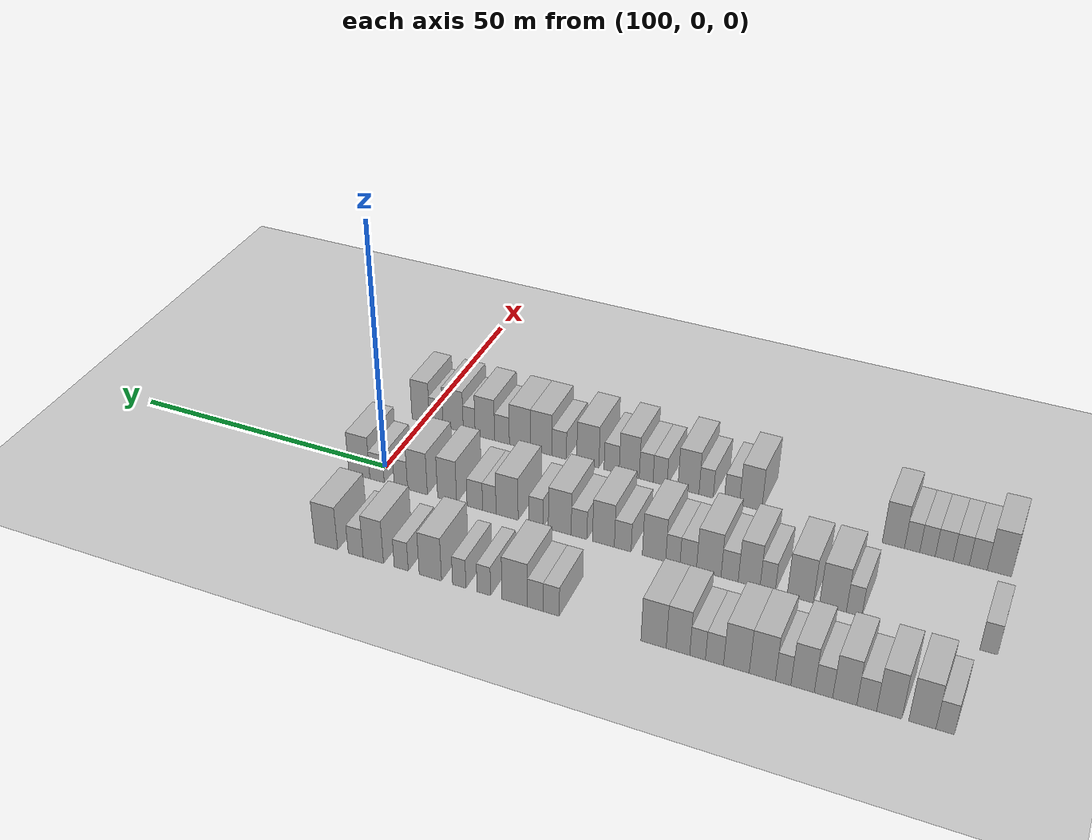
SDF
<sdf version="1.6">
 <world name="default">
  <include>
   <name>ground_plane_2</name>
   <uri>model://HANNAS_ground_plane</uri>
   <pose>100 0 0  0 0 0</pose>
  </include>
  <model name="building_575">
   <static>1</static>
   <pose>82.0000 -104.3540 0 0.000000 0.000000 0.000000</pose>
   <link name="link">
    <pose>0 0 3.00 0 0 0</pose>
    <collision name="collision"><geometry><box><size>10.0000 2.6939 6.0000</size></box></geometry></collision>
    <visual name="visual">
     <cast_shadows>0</cast_shadows>
     <geometry><box><size>10.0000 2.6939 6.0000</size></box></geometry>
     <material>
      <script>
       <uri>model://HANNAS_wall/materials/scripts</uri>
       <uri>model://HANNAS_wall/materials/textures</uri>
       <name>vrc/HANNAS_wall</name>
      </script>
     </material>
    </visual>
   </link>
  </model>
  <model name="building_576">
   <static>1</static>
   <pose>82.0000 -101.0082 0 0.000000 0.000000 0.000000</pose>
   <link name="link">
    <pose>0 0 4.50 0 0 0</pose>
    <collision name="collision"><geometry><box><size>10.0000 3.9977 9.0000</size></box></geometry></collision>
    <visual name="visual">
     <cast_shadows>0</cast_shadows>
     <geometry><box><size>10.0000 3.9977 9.0000</size></box></geometry>
     <material>
      <script>
       <uri>model://HANNAS_wall/materials/scripts</uri>
       <uri>model://HANNAS_wall/materials/textures</uri>
       <name>vrc/HANNAS_wall</name>
      </script>
     </material>
    </visual>
   </link>
  </model>
  <model name="building_577">
   <static>1</static>
   <pose>82.0000 -96.1224 0 0.000000 0.000000 0.000000</pose>
   <link name="link">
    <pose>0 0 4.50 0 0 0</pose>
    <collision name="collision"><geometry><box><size>10.0000 3.7740 9.0000</size></box></geometry></collision>
    <visual name="visual">
     <cast_shadows>0</cast_shadows>
     <geometry><box><size>10.0000 3.7740 9.0000</size></box></geometry>
     <material>
      <script>
       <uri>model://HANNAS_wall/materials/scripts</uri>
       <uri>model://HANNAS_wall/materials/textures</uri>
       <name>vrc/HANNAS_wall</name>
      </script>
     </material>
    </visual>
   </link>
  </model>
  <model name="building_578">
   <static>1</static>
   <pose>82.0000 -92.7496 0 0.000000 0.000000 0.000000</pose>
   <link name="link">
    <pose>0 0 3.00 0 0 0</pose>
    <collision name="collision"><geometry><box><size>10.0000 2.9716 6.0000</size></box></geometry></collision>
    <visual name="visual">
     <cast_shadows>0</cast_shadows>
     <geometry><box><size>10.0000 2.9716 6.0000</size></box></geometry>
     <material>
      <script>
       <uri>model://HANNAS_wall/materials/scripts</uri>
       <uri>model://HANNAS_wall/materials/textures</uri>
       <name>vrc/HANNAS_wall</name>
      </script>
     </material>
    </visual>
   </link>
  </model>
  <model name="building_579">
   <static>1</static>
   <pose>82.0000 -89.4335 0 0.000000 0.000000 0.000000</pose>
   <link name="link">
    <pose>0 0 4.50 0 0 0</pose>
    <collision name="collision"><geometry><box><size>10.0000 3.6606 9.0000</size></box></geometry></collision>
    <visual name="visual">
     <cast_shadows>0</cast_shadows>
     <geometry><box><size>10.0000 3.6606 9.0000</size></box></geometry>
     <material>
      <script>
       <uri>model://HANNAS_wall/materials/scripts</uri>
       <uri>model://HANNAS_wall/materials/textures</uri>
       <name>vrc/HANNAS_wall</name>
      </script>
     </material>
    </visual>
   </link>
  </model>
  <model name="building_580">
   <static>1</static>
   <pose>82.0000 -86.1973 0 0.000000 0.000000 0.000000</pose>
   <link name="link">
    <pose>0 0 3.00 0 0 0</pose>
    <collision name="collision"><geometry><box><size>10.0000 2.8118 6.0000</size></box></geometry></collision>
    <visual name="visual">
     <cast_shadows>0</cast_shadows>
     <geometry><box><size>10.0000 2.8118 6.0000</size></box></geometry>
     <material>
      <script>
       <uri>model://HANNAS_wall/materials/scripts</uri>
       <uri>model://HANNAS_wall/materials/textures</uri>
       <name>vrc/HANNAS_wall</name>
      </script>
     </material>
    </visual>
   </link>
  </model>
  <model name="building_581">
   <static>1</static>
   <pose>82.0000 -82.9815 0 0.000000 0.000000 0.000000</pose>
   <link name="link">
    <pose>0 0 4.50 0 0 0</pose>
    <collision name="collision"><geometry><box><size>10.0000 3.6198 9.0000</size></box></geometry></collision>
    <visual name="visual">
     <cast_shadows>0</cast_shadows>
     <geometry><box><size>10.0000 3.6198 9.0000</size></box></geometry>
     <material>
      <script>
       <uri>model://HANNAS_wall/materials/scripts</uri>
       <uri>model://HANNAS_wall/materials/textures</uri>
       <name>vrc/HANNAS_wall</name>
      </script>
     </material>
    </visual>
   </link>
  </model>
  <model name="building_582">
   <static>1</static>
   <pose>82.0000 -79.9645 0 0.000000 0.000000 0.000000</pose>
   <link name="link">
    <pose>0 0 3.00 0 0 0</pose>
    <collision name="collision"><geometry><box><size>10.0000 2.4142 6.0000</size></box></geometry></collision>
    <visual name="visual">
     <cast_shadows>0</cast_shadows>
     <geometry><box><size>10.0000 2.4142 6.0000</size></box></geometry>
     <material>
      <script>
       <uri>model://HANNAS_wall/materials/scripts</uri>
       <uri>model://HANNAS_wall/materials/textures</uri>
       <name>vrc/HANNAS_wall</name>
      </script>
     </material>
    </visual>
   </link>
  </model>
  <model name="building_583">
   <static>1</static>
   <pose>82.0000 -76.7062 0 0.000000 0.000000 0.000000</pose>
   <link name="link">
    <pose>0 0 4.50 0 0 0</pose>
    <collision name="collision"><geometry><box><size>10.0000 4.1023 9.0000</size></box></geometry></collision>
    <visual name="visual">
     <cast_shadows>0</cast_shadows>
     <geometry><box><size>10.0000 4.1023 9.0000</size></box></geometry>
     <material>
      <script>
       <uri>model://HANNAS_wall/materials/scripts</uri>
       <uri>model://HANNAS_wall/materials/textures</uri>
       <name>vrc/HANNAS_wall</name>
      </script>
     </material>
    </visual>
   </link>
  </model>
  <model name="building_584">
   <static>1</static>
   <pose>82.0000 -72.6085 0 0.000000 0.000000 0.000000</pose>
   <link name="link">
    <pose>0 0 4.50 0 0 0</pose>
    <collision name="collision"><geometry><box><size>10.0000 4.0931 9.0000</size></box></geometry></collision>
    <visual name="visual">
     <cast_shadows>0</cast_shadows>
     <geometry><box><size>10.0000 4.0931 9.0000</size></box></geometry>
     <material>
      <script>
       <uri>model://HANNAS_wall/materials/scripts</uri>
       <uri>model://HANNAS_wall/materials/textures</uri>
       <name>vrc/HANNAS_wall</name>
      </script>
     </material>
    </visual>
   </link>
  </model>
  <model name="building_585">
   <static>1</static>
   <pose>82.0000 -69.1121 0 0.000000 0.000000 0.000000</pose>
   <link name="link">
    <pose>0 0 3.00 0 0 0</pose>
    <collision name="collision"><geometry><box><size>10.0000 2.8999 6.0000</size></box></geometry></collision>
    <visual name="visual">
     <cast_shadows>0</cast_shadows>
     <geometry><box><size>10.0000 2.8999 6.0000</size></box></geometry>
     <material>
      <script>
       <uri>model://HANNAS_wall/materials/scripts</uri>
       <uri>model://HANNAS_wall/materials/textures</uri>
       <name>vrc/HANNAS_wall</name>
      </script>
     </material>
    </visual>
   </link>
  </model>
  <model name="building_586">
   <static>1</static>
   <pose>82.0000 -66.3932 0 0.000000 0.000000 0.000000</pose>
   <link name="link">
    <pose>0 0 3.00 0 0 0</pose>
    <collision name="collision"><geometry><box><size>10.0000 2.5379 6.0000</size></box></geometry></collision>
    <visual name="visual">
     <cast_shadows>0</cast_shadows>
     <geometry><box><size>10.0000 2.5379 6.0000</size></box></geometry>
     <material>
      <script>
       <uri>model://HANNAS_wall/materials/scripts</uri>
       <uri>model://HANNAS_wall/materials/textures</uri>
       <name>vrc/HANNAS_wall</name>
      </script>
     </material>
    </visual>
   </link>
  </model>
  <model name="building_587">
   <static>1</static>
   <pose>82.0000 -63.2085 0 0.000000 0.000000 0.000000</pose>
   <link name="link">
    <pose>0 0 4.50 0 0 0</pose>
    <collision name="collision"><geometry><box><size>10.0000 3.8314 9.0000</size></box></geometry></collision>
    <visual name="visual">
     <cast_shadows>0</cast_shadows>
     <geometry><box><size>10.0000 3.8314 9.0000</size></box></geometry>
     <material>
      <script>
       <uri>model://HANNAS_wall/materials/scripts</uri>
       <uri>model://HANNAS_wall/materials/textures</uri>
       <name>vrc/HANNAS_wall</name>
      </script>
     </material>
    </visual>
   </link>
  </model>
  <model name="building_588">
   <static>1</static>
   <pose>82.0000 -59.2131 0 0.000000 0.000000 0.000000</pose>
   <link name="link">
    <pose>0 0 4.50 0 0 0</pose>
    <collision name="collision"><geometry><box><size>10.0000 4.1595 9.0000</size></box></geometry></collision>
    <visual name="visual">
     <cast_shadows>0</cast_shadows>
     <geometry><box><size>10.0000 4.1595 9.0000</size></box></geometry>
     <material>
      <script>
       <uri>model://HANNAS_wall/materials/scripts</uri>
       <uri>model://HANNAS_wall/materials/textures</uri>
       <name>vrc/HANNAS_wall</name>
      </script>
     </material>
    </visual>
   </link>
  </model>
  <model name="building_589">
   <static>1</static>
   <pose>82.0000 -41.9427 0 0.000000 0.000000 0.000000</pose>
   <link name="link">
    <pose>0 0 3.00 0 0 0</pose>
    <collision name="collision"><geometry><box><size>10.0000 2.7938 6.0000</size></box></geometry></collision>
    <visual name="visual">
     <cast_shadows>0</cast_shadows>
     <geometry><box><size>10.0000 2.7938 6.0000</size></box></geometry>
     <material>
      <script>
       <uri>model://HANNAS_wall/materials/scripts</uri>
       <uri>model://HANNAS_wall/materials/textures</uri>
       <name>vrc/HANNAS_wall</name>
      </script>
     </material>
    </visual>
   </link>
  </model>
  <model name="building_590">
   <static>1</static>
   <pose>82.0000 -39.1958 0 0.000000 0.000000 0.000000</pose>
   <link name="link">
    <pose>0 0 3.00 0 0 0</pose>
    <collision name="collision"><geometry><box><size>10.0000 2.7001 6.0000</size></box></geometry></collision>
    <visual name="visual">
     <cast_shadows>0</cast_shadows>
     <geometry><box><size>10.0000 2.7001 6.0000</size></box></geometry>
     <material>
      <script>
       <uri>model://HANNAS_wall/materials/scripts</uri>
       <uri>model://HANNAS_wall/materials/textures</uri>
       <name>vrc/HANNAS_wall</name>
      </script>
     </material>
    </visual>
   </link>
  </model>
  <model name="building_591">
   <static>1</static>
   <pose>82.0000 -35.6001 0 0.000000 0.000000 0.000000</pose>
   <link name="link">
    <pose>0 0 4.50 0 0 0</pose>
    <collision name="collision"><geometry><box><size>10.0000 4.4913 9.0000</size></box></geometry></collision>
    <visual name="visual">
     <cast_shadows>0</cast_shadows>
     <geometry><box><size>10.0000 4.4913 9.0000</size></box></geometry>
     <material>
      <script>
       <uri>model://HANNAS_wall/materials/scripts</uri>
       <uri>model://HANNAS_wall/materials/textures</uri>
       <name>vrc/HANNAS_wall</name>
      </script>
     </material>
    </visual>
   </link>
  </model>
  <model name="building_592">
   <static>1</static>
   <pose>82.0000 -30.1511 0 0.000000 0.000000 0.000000</pose>
   <link name="link">
    <pose>0 0 3.00 0 0 0</pose>
    <collision name="collision"><geometry><box><size>10.0000 2.4069 6.0000</size></box></geometry></collision>
    <visual name="visual">
     <cast_shadows>0</cast_shadows>
     <geometry><box><size>10.0000 2.4069 6.0000</size></box></geometry>
     <material>
      <script>
       <uri>model://HANNAS_wall/materials/scripts</uri>
       <uri>model://HANNAS_wall/materials/textures</uri>
       <name>vrc/HANNAS_wall</name>
      </script>
     </material>
    </visual>
   </link>
  </model>
  <model name="building_593">
   <static>1</static>
   <pose>82.0000 -25.7452 0 0.000000 0.000000 0.000000</pose>
   <link name="link">
    <pose>0 0 3.00 0 0 0</pose>
    <collision name="collision"><geometry><box><size>10.0000 2.4048 6.0000</size></box></geometry></collision>
    <visual name="visual">
     <cast_shadows>0</cast_shadows>
     <geometry><box><size>10.0000 2.4048 6.0000</size></box></geometry>
     <material>
      <script>
       <uri>model://HANNAS_wall/materials/scripts</uri>
       <uri>model://HANNAS_wall/materials/textures</uri>
       <name>vrc/HANNAS_wall</name>
      </script>
     </material>
    </visual>
   </link>
  </model>
  <model name="building_594">
   <static>1</static>
   <pose>82.0000 -20.4985 0 0.000000 0.000000 0.000000</pose>
   <link name="link">
    <pose>0 0 4.50 0 0 0</pose>
    <collision name="collision"><geometry><box><size>10.0000 4.0887 9.0000</size></box></geometry></collision>
    <visual name="visual">
     <cast_shadows>0</cast_shadows>
     <geometry><box><size>10.0000 4.0887 9.0000</size></box></geometry>
     <material>
      <script>
       <uri>model://HANNAS_wall/materials/scripts</uri>
       <uri>model://HANNAS_wall/materials/textures</uri>
       <name>vrc/HANNAS_wall</name>
      </script>
     </material>
    </visual>
   </link>
  </model>
  <model name="building_595">
   <static>1</static>
   <pose>82.0000 -15.1555 0 0.000000 0.000000 0.000000</pose>
   <link name="link">
    <pose>0 0 3.00 0 0 0</pose>
    <collision name="collision"><geometry><box><size>10.0000 2.5972 6.0000</size></box></geometry></collision>
    <visual name="visual">
     <cast_shadows>0</cast_shadows>
     <geometry><box><size>10.0000 2.5972 6.0000</size></box></geometry>
     <material>
      <script>
       <uri>model://HANNAS_wall/materials/scripts</uri>
       <uri>model://HANNAS_wall/materials/textures</uri>
       <name>vrc/HANNAS_wall</name>
      </script>
     </material>
    </visual>
   </link>
  </model>
  <model name="building_596">
   <static>1</static>
   <pose>82.0000 -9.9549 0 0.000000 0.000000 0.000000</pose>
   <link name="link">
    <pose>0 0 4.50 0 0 0</pose>
    <collision name="collision"><geometry><box><size>10.0000 3.8040 9.0000</size></box></geometry></collision>
    <visual name="visual">
     <cast_shadows>0</cast_shadows>
     <geometry><box><size>10.0000 3.8040 9.0000</size></box></geometry>
     <material>
      <script>
       <uri>model://HANNAS_wall/materials/scripts</uri>
       <uri>model://HANNAS_wall/materials/textures</uri>
       <name>vrc/HANNAS_wall</name>
      </script>
     </material>
    </visual>
   </link>
  </model>
  <model name="building_597">
   <static>1</static>
   <pose>82.0000 -6.6315 0 0.000000 0.000000 0.000000</pose>
   <link name="link">
    <pose>0 0 3.00 0 0 0</pose>
    <collision name="collision"><geometry><box><size>10.0000 2.8429 6.0000</size></box></geometry></collision>
    <visual name="visual">
     <cast_shadows>0</cast_shadows>
     <geometry><box><size>10.0000 2.8429 6.0000</size></box></geometry>
     <material>
      <script>
       <uri>model://HANNAS_wall/materials/scripts</uri>
       <uri>model://HANNAS_wall/materials/textures</uri>
       <name>vrc/HANNAS_wall</name>
      </script>
     </material>
    </visual>
   </link>
  </model>
  <model name="building_598">
   <static>1</static>
   <pose>82.0000 -1.0185 0 0.000000 0.000000 0.000000</pose>
   <link name="link">
    <pose>0 0 4.50 0 0 0</pose>
    <collision name="collision"><geometry><box><size>10.0000 4.3831 9.0000</size></box></geometry></collision>
    <visual name="visual">
     <cast_shadows>0</cast_shadows>
     <geometry><box><size>10.0000 4.3831 9.0000</size></box></geometry>
     <material>
      <script>
       <uri>model://HANNAS_wall/materials/scripts</uri>
       <uri>model://HANNAS_wall/materials/textures</uri>
       <name>vrc/HANNAS_wall</name>
      </script>
     </material>
    </visual>
   </link>
  </model>
  <model name="building_747">
   <static>1</static>
   <pose>101.0000 -107.3086 0 0.000000 0.000000 0.000000</pose>
   <link name="link">
    <pose>0 0 3.00 0 0 0</pose>
    <collision name="collision"><geometry><box><size>10.0000 2.7430 6.0000</size></box></geometry></collision>
    <visual name="visual">
     <cast_shadows>0</cast_shadows>
     <geometry><box><size>10.0000 2.7430 6.0000</size></box></geometry>
     <material>
      <script>
       <uri>model://HANNAS_wall/materials/scripts</uri>
       <uri>model://HANNAS_wall/materials/textures</uri>
       <name>vrc/HANNAS_wall</name>
      </script>
     </material>
    </visual>
   </link>
  </model>
  <model name="building_748">
   <static>1</static>
   <pose>101.0000 -86.1704 0 0.000000 0.000000 0.000000</pose>
   <link name="link">
    <pose>0 0 3.00 0 0 0</pose>
    <collision name="collision"><geometry><box><size>10.0000 2.5112 6.0000</size></box></geometry></collision>
    <visual name="visual">
     <cast_shadows>0</cast_shadows>
     <geometry><box><size>10.0000 2.5112 6.0000</size></box></geometry>
     <material>
      <script>
       <uri>model://HANNAS_wall/materials/scripts</uri>
       <uri>model://HANNAS_wall/materials/textures</uri>
       <name>vrc/HANNAS_wall</name>
      </script>
     </material>
    </visual>
   </link>
  </model>
  <model name="building_749">
   <static>1</static>
   <pose>101.0000 -82.7253 0 0.000000 0.000000 0.000000</pose>
   <link name="link">
    <pose>0 0 4.50 0 0 0</pose>
    <collision name="collision"><geometry><box><size>10.0000 4.3790 9.0000</size></box></geometry></collision>
    <visual name="visual">
     <cast_shadows>0</cast_shadows>
     <geometry><box><size>10.0000 4.3790 9.0000</size></box></geometry>
     <material>
      <script>
       <uri>model://HANNAS_wall/materials/scripts</uri>
       <uri>model://HANNAS_wall/materials/textures</uri>
       <name>vrc/HANNAS_wall</name>
      </script>
     </material>
    </visual>
   </link>
  </model>
  <model name="building_750">
   <static>1</static>
   <pose>101.0000 -77.3717 0 0.000000 0.000000 0.000000</pose>
   <link name="link">
    <pose>0 0 4.50 0 0 0</pose>
    <collision name="collision"><geometry><box><size>10.0000 4.3282 9.0000</size></box></geometry></collision>
    <visual name="visual">
     <cast_shadows>0</cast_shadows>
     <geometry><box><size>10.0000 4.3282 9.0000</size></box></geometry>
     <material>
      <script>
       <uri>model://HANNAS_wall/materials/scripts</uri>
       <uri>model://HANNAS_wall/materials/textures</uri>
       <name>vrc/HANNAS_wall</name>
      </script>
     </material>
    </visual>
   </link>
  </model>
  <model name="building_751">
   <static>1</static>
   <pose>101.0000 -71.9371 0 0.000000 0.000000 0.000000</pose>
   <link name="link">
    <pose>0 0 3.00 0 0 0</pose>
    <collision name="collision"><geometry><box><size>10.0000 2.5411 6.0000</size></box></geometry></collision>
    <visual name="visual">
     <cast_shadows>0</cast_shadows>
     <geometry><box><size>10.0000 2.5411 6.0000</size></box></geometry>
     <material>
      <script>
       <uri>model://HANNAS_wall/materials/scripts</uri>
       <uri>model://HANNAS_wall/materials/textures</uri>
       <name>vrc/HANNAS_wall</name>
      </script>
     </material>
    </visual>
   </link>
  </model>
  <model name="building_752">
   <static>1</static>
   <pose>101.0000 -68.8232 0 0.000000 0.000000 0.000000</pose>
   <link name="link">
    <pose>0 0 4.50 0 0 0</pose>
    <collision name="collision"><geometry><box><size>10.0000 3.6865 9.0000</size></box></geometry></collision>
    <visual name="visual">
     <cast_shadows>0</cast_shadows>
     <geometry><box><size>10.0000 3.6865 9.0000</size></box></geometry>
     <material>
      <script>
       <uri>model://HANNAS_wall/materials/scripts</uri>
       <uri>model://HANNAS_wall/materials/textures</uri>
       <name>vrc/HANNAS_wall</name>
      </script>
     </material>
    </visual>
   </link>
  </model>
  <model name="building_753">
   <static>1</static>
   <pose>101.0000 -65.5203 0 0.000000 0.000000 0.000000</pose>
   <link name="link">
    <pose>0 0 3.00 0 0 0</pose>
    <collision name="collision"><geometry><box><size>10.0000 2.9194 6.0000</size></box></geometry></collision>
    <visual name="visual">
     <cast_shadows>0</cast_shadows>
     <geometry><box><size>10.0000 2.9194 6.0000</size></box></geometry>
     <material>
      <script>
       <uri>model://HANNAS_wall/materials/scripts</uri>
       <uri>model://HANNAS_wall/materials/textures</uri>
       <name>vrc/HANNAS_wall</name>
      </script>
     </material>
    </visual>
   </link>
  </model>
  <model name="building_754">
   <static>1</static>
   <pose>101.0000 -61.9426 0 0.000000 0.000000 0.000000</pose>
   <link name="link">
    <pose>0 0 4.50 0 0 0</pose>
    <collision name="collision"><geometry><box><size>10.0000 4.2359 9.0000</size></box></geometry></collision>
    <visual name="visual">
     <cast_shadows>0</cast_shadows>
     <geometry><box><size>10.0000 4.2359 9.0000</size></box></geometry>
     <material>
      <script>
       <uri>model://HANNAS_wall/materials/scripts</uri>
       <uri>model://HANNAS_wall/materials/textures</uri>
       <name>vrc/HANNAS_wall</name>
      </script>
     </material>
    </visual>
   </link>
  </model>
  <model name="building_755">
   <static>1</static>
   <pose>101.0000 -58.4001 0 0.000000 0.000000 0.000000</pose>
   <link name="link">
    <pose>0 0 3.00 0 0 0</pose>
    <collision name="collision"><geometry><box><size>10.0000 2.8492 6.0000</size></box></geometry></collision>
    <visual name="visual">
     <cast_shadows>0</cast_shadows>
     <geometry><box><size>10.0000 2.8492 6.0000</size></box></geometry>
     <material>
      <script>
       <uri>model://HANNAS_wall/materials/scripts</uri>
       <uri>model://HANNAS_wall/materials/textures</uri>
       <name>vrc/HANNAS_wall</name>
      </script>
     </material>
    </visual>
   </link>
  </model>
  <model name="building_756">
   <static>1</static>
   <pose>101.0000 -55.7331 0 0.000000 0.000000 0.000000</pose>
   <link name="link">
    <pose>0 0 3.00 0 0 0</pose>
    <collision name="collision"><geometry><box><size>10.0000 2.4847 6.0000</size></box></geometry></collision>
    <visual name="visual">
     <cast_shadows>0</cast_shadows>
     <geometry><box><size>10.0000 2.4847 6.0000</size></box></geometry>
     <material>
      <script>
       <uri>model://HANNAS_wall/materials/scripts</uri>
       <uri>model://HANNAS_wall/materials/textures</uri>
       <name>vrc/HANNAS_wall</name>
      </script>
     </material>
    </visual>
   </link>
  </model>
  <model name="building_757">
   <static>1</static>
   <pose>101.0000 -52.4357 0 0.000000 0.000000 0.000000</pose>
   <link name="link">
    <pose>0 0 4.50 0 0 0</pose>
    <collision name="collision"><geometry><box><size>10.0000 4.1102 9.0000</size></box></geometry></collision>
    <visual name="visual">
     <cast_shadows>0</cast_shadows>
     <geometry><box><size>10.0000 4.1102 9.0000</size></box></geometry>
     <material>
      <script>
       <uri>model://HANNAS_wall/materials/scripts</uri>
       <uri>model://HANNAS_wall/materials/textures</uri>
       <name>vrc/HANNAS_wall</name>
      </script>
     </material>
    </visual>
   </link>
  </model>
  <model name="building_758">
   <static>1</static>
   <pose>101.0000 -46.8863 0 0.000000 0.000000 0.000000</pose>
   <link name="link">
    <pose>0 0 3.00 0 0 0</pose>
    <collision name="collision"><geometry><box><size>10.0000 2.9886 6.0000</size></box></geometry></collision>
    <visual name="visual">
     <cast_shadows>0</cast_shadows>
     <geometry><box><size>10.0000 2.9886 6.0000</size></box></geometry>
     <material>
      <script>
       <uri>model://HANNAS_wall/materials/scripts</uri>
       <uri>model://HANNAS_wall/materials/textures</uri>
       <name>vrc/HANNAS_wall</name>
      </script>
     </material>
    </visual>
   </link>
  </model>
  <model name="building_759">
   <static>1</static>
   <pose>101.0000 -43.4188 0 0.000000 0.000000 0.000000</pose>
   <link name="link">
    <pose>0 0 4.50 0 0 0</pose>
    <collision name="collision"><geometry><box><size>10.0000 3.9465 9.0000</size></box></geometry></collision>
    <visual name="visual">
     <cast_shadows>0</cast_shadows>
     <geometry><box><size>10.0000 3.9465 9.0000</size></box></geometry>
     <material>
      <script>
       <uri>model://HANNAS_wall/materials/scripts</uri>
       <uri>model://HANNAS_wall/materials/textures</uri>
       <name>vrc/HANNAS_wall</name>
      </script>
     </material>
    </visual>
   </link>
  </model>
  <model name="building_760">
   <static>1</static>
   <pose>101.0000 -39.0096 0 0.000000 0.000000 0.000000</pose>
   <link name="link">
    <pose>0 0 3.00 0 0 0</pose>
    <collision name="collision"><geometry><box><size>10.0000 2.8720 6.0000</size></box></geometry></collision>
    <visual name="visual">
     <cast_shadows>0</cast_shadows>
     <geometry><box><size>10.0000 2.8720 6.0000</size></box></geometry>
     <material>
      <script>
       <uri>model://HANNAS_wall/materials/scripts</uri>
       <uri>model://HANNAS_wall/materials/textures</uri>
       <name>vrc/HANNAS_wall</name>
      </script>
     </material>
    </visual>
   </link>
  </model>
  <model name="building_761">
   <static>1</static>
   <pose>101.0000 -35.4742 0 0.000000 0.000000 0.000000</pose>
   <link name="link">
    <pose>0 0 4.50 0 0 0</pose>
    <collision name="collision"><geometry><box><size>10.0000 4.1988 9.0000</size></box></geometry></collision>
    <visual name="visual">
     <cast_shadows>0</cast_shadows>
     <geometry><box><size>10.0000 4.1988 9.0000</size></box></geometry>
     <material>
      <script>
       <uri>model://HANNAS_wall/materials/scripts</uri>
       <uri>model://HANNAS_wall/materials/textures</uri>
       <name>vrc/HANNAS_wall</name>
      </script>
     </material>
    </visual>
   </link>
  </model>
  <model name="building_762">
   <static>1</static>
   <pose>101.0000 -31.0665 0 0.000000 0.000000 0.000000</pose>
   <link name="link">
    <pose>0 0 3.00 0 0 0</pose>
    <collision name="collision"><geometry><box><size>10.0000 2.6165 6.0000</size></box></geometry></collision>
    <visual name="visual">
     <cast_shadows>0</cast_shadows>
     <geometry><box><size>10.0000 2.6165 6.0000</size></box></geometry>
     <material>
      <script>
       <uri>model://HANNAS_wall/materials/scripts</uri>
       <uri>model://HANNAS_wall/materials/textures</uri>
       <name>vrc/HANNAS_wall</name>
      </script>
     </material>
    </visual>
   </link>
  </model>
  <model name="building_763">
   <static>1</static>
   <pose>101.0000 -25.6819 0 0.000000 0.000000 0.000000</pose>
   <link name="link">
    <pose>0 0 4.50 0 0 0</pose>
    <collision name="collision"><geometry><box><size>10.0000 4.1529 9.0000</size></box></geometry></collision>
    <visual name="visual">
     <cast_shadows>0</cast_shadows>
     <geometry><box><size>10.0000 4.1529 9.0000</size></box></geometry>
     <material>
      <script>
       <uri>model://HANNAS_wall/materials/scripts</uri>
       <uri>model://HANNAS_wall/materials/textures</uri>
       <name>vrc/HANNAS_wall</name>
      </script>
     </material>
    </visual>
   </link>
  </model>
  <model name="building_764">
   <static>1</static>
   <pose>101.0000 -22.3312 0 0.000000 0.000000 0.000000</pose>
   <link name="link">
    <pose>0 0 3.00 0 0 0</pose>
    <collision name="collision"><geometry><box><size>10.0000 2.5484 6.0000</size></box></geometry></collision>
    <visual name="visual">
     <cast_shadows>0</cast_shadows>
     <geometry><box><size>10.0000 2.5484 6.0000</size></box></geometry>
     <material>
      <script>
       <uri>model://HANNAS_wall/materials/scripts</uri>
       <uri>model://HANNAS_wall/materials/textures</uri>
       <name>vrc/HANNAS_wall</name>
      </script>
     </material>
    </visual>
   </link>
  </model>
  <model name="building_765">
   <static>1</static>
   <pose>101.0000 -19.5704 0 0.000000 0.000000 0.000000</pose>
   <link name="link">
    <pose>0 0 3.00 0 0 0</pose>
    <collision name="collision"><geometry><box><size>10.0000 2.9733 6.0000</size></box></geometry></collision>
    <visual name="visual">
     <cast_shadows>0</cast_shadows>
     <geometry><box><size>10.0000 2.9733 6.0000</size></box></geometry>
     <material>
      <script>
       <uri>model://HANNAS_wall/materials/scripts</uri>
       <uri>model://HANNAS_wall/materials/textures</uri>
       <name>vrc/HANNAS_wall</name>
      </script>
     </material>
    </visual>
   </link>
  </model>
  <model name="building_766">
   <static>1</static>
   <pose>101.0000 -14.2437 0 0.000000 0.000000 0.000000</pose>
   <link name="link">
    <pose>0 0 4.50 0 0 0</pose>
    <collision name="collision"><geometry><box><size>10.0000 3.6801 9.0000</size></box></geometry></collision>
    <visual name="visual">
     <cast_shadows>0</cast_shadows>
     <geometry><box><size>10.0000 3.6801 9.0000</size></box></geometry>
     <material>
      <script>
       <uri>model://HANNAS_wall/materials/scripts</uri>
       <uri>model://HANNAS_wall/materials/textures</uri>
       <name>vrc/HANNAS_wall</name>
      </script>
     </material>
    </visual>
   </link>
  </model>
  <model name="building_767">
   <static>1</static>
   <pose>101.0000 -8.4567 0 0.000000 0.000000 0.000000</pose>
   <link name="link">
    <pose>0 0 4.50 0 0 0</pose>
    <collision name="collision"><geometry><box><size>10.0000 3.8938 9.0000</size></box></geometry></collision>
    <visual name="visual">
     <cast_shadows>0</cast_shadows>
     <geometry><box><size>10.0000 3.8938 9.0000</size></box></geometry>
     <material>
      <script>
       <uri>model://HANNAS_wall/materials/scripts</uri>
       <uri>model://HANNAS_wall/materials/textures</uri>
       <name>vrc/HANNAS_wall</name>
      </script>
     </material>
    </visual>
   </link>
  </model>
  <model name="building_768">
   <static>1</static>
   <pose>101.0000 -5.1970 0 0.000000 0.000000 0.000000</pose>
   <link name="link">
    <pose>0 0 3.00 0 0 0</pose>
    <collision name="collision"><geometry><box><size>10.0000 2.6257 6.0000</size></box></geometry></collision>
    <visual name="visual">
     <cast_shadows>0</cast_shadows>
     <geometry><box><size>10.0000 2.6257 6.0000</size></box></geometry>
     <material>
      <script>
       <uri>model://HANNAS_wall/materials/scripts</uri>
       <uri>model://HANNAS_wall/materials/textures</uri>
       <name>vrc/HANNAS_wall</name>
      </script>
     </material>
    </visual>
   </link>
  </model>
  <model name="building_769">
   <static>1</static>
   <pose>101.0000 -0.4449 0 0.000000 0.000000 0.000000</pose>
   <link name="link">
    <pose>0 0 3.00 0 0 0</pose>
    <collision name="collision"><geometry><box><size>10.0000 2.8785 6.0000</size></box></geometry></collision>
    <visual name="visual">
     <cast_shadows>0</cast_shadows>
     <geometry><box><size>10.0000 2.8785 6.0000</size></box></geometry>
     <material>
      <script>
       <uri>model://HANNAS_wall/materials/scripts</uri>
       <uri>model://HANNAS_wall/materials/textures</uri>
       <name>vrc/HANNAS_wall</name>
      </script>
     </material>
    </visual>
   </link>
  </model>
  <model name="building_770">
   <static>1</static>
   <pose>101.0000 3.1016 0 0.000000 0.000000 0.000000</pose>
   <link name="link">
    <pose>0 0 4.50 0 0 0</pose>
    <collision name="collision"><geometry><box><size>10.0000 4.2146 9.0000</size></box></geometry></collision>
    <visual name="visual">
     <cast_shadows>0</cast_shadows>
     <geometry><box><size>10.0000 4.2146 9.0000</size></box></geometry>
     <material>
      <script>
       <uri>model://HANNAS_wall/materials/scripts</uri>
       <uri>model://HANNAS_wall/materials/textures</uri>
       <name>vrc/HANNAS_wall</name>
      </script>
     </material>
    </visual>
   </link>
  </model>
  <model name="building_917">
   <static>1</static>
   <pose>120.0000 -105.7099 0 0.000000 0.000000 0.000000</pose>
   <link name="link">
    <pose>0 0 4.50 0 0 0</pose>
    <collision name="collision"><geometry><box><size>10.0000 3.9348 9.0000</size></box></geometry></collision>
    <visual name="visual">
     <cast_shadows>0</cast_shadows>
     <geometry><box><size>10.0000 3.9348 9.0000</size></box></geometry>
     <material>
      <script>
       <uri>model://HANNAS_wall/materials/scripts</uri>
       <uri>model://HANNAS_wall/materials/textures</uri>
       <name>vrc/HANNAS_wall</name>
      </script>
     </material>
    </visual>
   </link>
  </model>
  <model name="building_918">
   <static>1</static>
   <pose>120.0000 -102.2704 0 0.000000 0.000000 0.000000</pose>
   <link name="link">
    <pose>0 0 3.00 0 0 0</pose>
    <collision name="collision"><geometry><box><size>10.0000 2.9441 6.0000</size></box></geometry></collision>
    <visual name="visual">
     <cast_shadows>0</cast_shadows>
     <geometry><box><size>10.0000 2.9441 6.0000</size></box></geometry>
     <material>
      <script>
       <uri>model://HANNAS_wall/materials/scripts</uri>
       <uri>model://HANNAS_wall/materials/textures</uri>
       <name>vrc/HANNAS_wall</name>
      </script>
     </material>
    </visual>
   </link>
  </model>
  <model name="building_919">
   <static>1</static>
   <pose>120.0000 -99.4796 0 0.000000 0.000000 0.000000</pose>
   <link name="link">
    <pose>0 0 3.00 0 0 0</pose>
    <collision name="collision"><geometry><box><size>10.0000 2.6376 6.0000</size></box></geometry></collision>
    <visual name="visual">
     <cast_shadows>0</cast_shadows>
     <geometry><box><size>10.0000 2.6376 6.0000</size></box></geometry>
     <material>
      <script>
       <uri>model://HANNAS_wall/materials/scripts</uri>
       <uri>model://HANNAS_wall/materials/textures</uri>
       <name>vrc/HANNAS_wall</name>
      </script>
     </material>
    </visual>
   </link>
  </model>
  <model name="building_920">
   <static>1</static>
   <pose>120.0000 -96.6784 0 0.000000 0.000000 0.000000</pose>
   <link name="link">
    <pose>0 0 3.00 0 0 0</pose>
    <collision name="collision"><geometry><box><size>10.0000 2.9646 6.0000</size></box></geometry></collision>
    <visual name="visual">
     <cast_shadows>0</cast_shadows>
     <geometry><box><size>10.0000 2.9646 6.0000</size></box></geometry>
     <material>
      <script>
       <uri>model://HANNAS_wall/materials/scripts</uri>
       <uri>model://HANNAS_wall/materials/textures</uri>
       <name>vrc/HANNAS_wall</name>
      </script>
     </material>
    </visual>
   </link>
  </model>
  <model name="building_921">
   <static>1</static>
   <pose>120.0000 -93.9006 0 0.000000 0.000000 0.000000</pose>
   <link name="link">
    <pose>0 0 3.00 0 0 0</pose>
    <collision name="collision"><geometry><box><size>10.0000 2.5910 6.0000</size></box></geometry></collision>
    <visual name="visual">
     <cast_shadows>0</cast_shadows>
     <geometry><box><size>10.0000 2.5910 6.0000</size></box></geometry>
     <material>
      <script>
       <uri>model://HANNAS_wall/materials/scripts</uri>
       <uri>model://HANNAS_wall/materials/textures</uri>
       <name>vrc/HANNAS_wall</name>
      </script>
     </material>
    </visual>
   </link>
  </model>
  <model name="building_922">
   <static>1</static>
   <pose>120.0000 -91.3291 0 0.000000 0.000000 0.000000</pose>
   <link name="link">
    <pose>0 0 3.00 0 0 0</pose>
    <collision name="collision"><geometry><box><size>10.0000 2.5521 6.0000</size></box></geometry></collision>
    <visual name="visual">
     <cast_shadows>0</cast_shadows>
     <geometry><box><size>10.0000 2.5521 6.0000</size></box></geometry>
     <material>
      <script>
       <uri>model://HANNAS_wall/materials/scripts</uri>
       <uri>model://HANNAS_wall/materials/textures</uri>
       <name>vrc/HANNAS_wall</name>
      </script>
     </material>
    </visual>
   </link>
  </model>
  <model name="building_923">
   <static>1</static>
   <pose>120.0000 -88.1747 0 0.000000 0.000000 0.000000</pose>
   <link name="link">
    <pose>0 0 4.50 0 0 0</pose>
    <collision name="collision"><geometry><box><size>10.0000 3.7566 9.0000</size></box></geometry></collision>
    <visual name="visual">
     <cast_shadows>0</cast_shadows>
     <geometry><box><size>10.0000 3.7566 9.0000</size></box></geometry>
     <material>
      <script>
       <uri>model://HANNAS_wall/materials/scripts</uri>
       <uri>model://HANNAS_wall/materials/textures</uri>
       <name>vrc/HANNAS_wall</name>
      </script>
     </material>
    </visual>
   </link>
  </model>
  <model name="building_924">
   <static>1</static>
   <pose>120.0000 -63.3026 0 0.000000 0.000000 0.000000</pose>
   <link name="link">
    <pose>0 0 4.50 0 0 0</pose>
    <collision name="collision"><geometry><box><size>10.0000 3.9959 9.0000</size></box></geometry></collision>
    <visual name="visual">
     <cast_shadows>0</cast_shadows>
     <geometry><box><size>10.0000 3.9959 9.0000</size></box></geometry>
     <material>
      <script>
       <uri>model://HANNAS_wall/materials/scripts</uri>
       <uri>model://HANNAS_wall/materials/textures</uri>
       <name>vrc/HANNAS_wall</name>
      </script>
     </material>
    </visual>
   </link>
  </model>
  <model name="building_925">
   <static>1</static>
   <pose>120.0000 -59.9243 0 0.000000 0.000000 0.000000</pose>
   <link name="link">
    <pose>0 0 3.00 0 0 0</pose>
    <collision name="collision"><geometry><box><size>10.0000 2.7606 6.0000</size></box></geometry></collision>
    <visual name="visual">
     <cast_shadows>0</cast_shadows>
     <geometry><box><size>10.0000 2.7606 6.0000</size></box></geometry>
     <material>
      <script>
       <uri>model://HANNAS_wall/materials/scripts</uri>
       <uri>model://HANNAS_wall/materials/textures</uri>
       <name>vrc/HANNAS_wall</name>
      </script>
     </material>
    </visual>
   </link>
  </model>
  <model name="building_926">
   <static>1</static>
   <pose>120.0000 -55.2328 0 0.000000 0.000000 0.000000</pose>
   <link name="link">
    <pose>0 0 3.00 0 0 0</pose>
    <collision name="collision"><geometry><box><size>10.0000 2.6224 6.0000</size></box></geometry></collision>
    <visual name="visual">
     <cast_shadows>0</cast_shadows>
     <geometry><box><size>10.0000 2.6224 6.0000</size></box></geometry>
     <material>
      <script>
       <uri>model://HANNAS_wall/materials/scripts</uri>
       <uri>model://HANNAS_wall/materials/textures</uri>
       <name>vrc/HANNAS_wall</name>
      </script>
     </material>
    </visual>
   </link>
  </model>
  <model name="building_927">
   <static>1</static>
   <pose>120.0000 -51.9736 0 0.000000 0.000000 0.000000</pose>
   <link name="link">
    <pose>0 0 4.50 0 0 0</pose>
    <collision name="collision"><geometry><box><size>10.0000 3.8959 9.0000</size></box></geometry></collision>
    <visual name="visual">
     <cast_shadows>0</cast_shadows>
     <geometry><box><size>10.0000 3.8959 9.0000</size></box></geometry>
     <material>
      <script>
       <uri>model://HANNAS_wall/materials/scripts</uri>
       <uri>model://HANNAS_wall/materials/textures</uri>
       <name>vrc/HANNAS_wall</name>
      </script>
     </material>
    </visual>
   </link>
  </model>
  <model name="building_928">
   <static>1</static>
   <pose>120.0000 -46.7137 0 0.000000 0.000000 0.000000</pose>
   <link name="link">
    <pose>0 0 3.00 0 0 0</pose>
    <collision name="collision"><geometry><box><size>10.0000 2.6240 6.0000</size></box></geometry></collision>
    <visual name="visual">
     <cast_shadows>0</cast_shadows>
     <geometry><box><size>10.0000 2.6240 6.0000</size></box></geometry>
     <material>
      <script>
       <uri>model://HANNAS_wall/materials/scripts</uri>
       <uri>model://HANNAS_wall/materials/textures</uri>
       <name>vrc/HANNAS_wall</name>
      </script>
     </material>
    </visual>
   </link>
  </model>
  <model name="building_929">
   <static>1</static>
   <pose>120.0000 -44.0988 0 0.000000 0.000000 0.000000</pose>
   <link name="link">
    <pose>0 0 3.00 0 0 0</pose>
    <collision name="collision"><geometry><box><size>10.0000 2.6056 6.0000</size></box></geometry></collision>
    <visual name="visual">
     <cast_shadows>0</cast_shadows>
     <geometry><box><size>10.0000 2.6056 6.0000</size></box></geometry>
     <material>
      <script>
       <uri>model://HANNAS_wall/materials/scripts</uri>
       <uri>model://HANNAS_wall/materials/textures</uri>
       <name>vrc/HANNAS_wall</name>
      </script>
     </material>
    </visual>
   </link>
  </model>
  <model name="building_930">
   <static>1</static>
   <pose>120.0000 -40.8960 0 0.000000 0.000000 0.000000</pose>
   <link name="link">
    <pose>0 0 4.50 0 0 0</pose>
    <collision name="collision"><geometry><box><size>10.0000 3.7999 9.0000</size></box></geometry></collision>
    <visual name="visual">
     <cast_shadows>0</cast_shadows>
     <geometry><box><size>10.0000 3.7999 9.0000</size></box></geometry>
     <material>
      <script>
       <uri>model://HANNAS_wall/materials/scripts</uri>
       <uri>model://HANNAS_wall/materials/textures</uri>
       <name>vrc/HANNAS_wall</name>
      </script>
     </material>
    </visual>
   </link>
  </model>
  <model name="building_931">
   <static>1</static>
   <pose>120.0000 -37.5584 0 0.000000 0.000000 0.000000</pose>
   <link name="link">
    <pose>0 0 3.00 0 0 0</pose>
    <collision name="collision"><geometry><box><size>10.0000 2.8753 6.0000</size></box></geometry></collision>
    <visual name="visual">
     <cast_shadows>0</cast_shadows>
     <geometry><box><size>10.0000 2.8753 6.0000</size></box></geometry>
     <material>
      <script>
       <uri>model://HANNAS_wall/materials/scripts</uri>
       <uri>model://HANNAS_wall/materials/textures</uri>
       <name>vrc/HANNAS_wall</name>
      </script>
     </material>
    </visual>
   </link>
  </model>
  <model name="building_932">
   <static>1</static>
   <pose>120.0000 -32.9792 0 0.000000 0.000000 0.000000</pose>
   <link name="link">
    <pose>0 0 4.50 0 0 0</pose>
    <collision name="collision"><geometry><box><size>10.0000 4.2833 9.0000</size></box></geometry></collision>
    <visual name="visual">
     <cast_shadows>0</cast_shadows>
     <geometry><box><size>10.0000 4.2833 9.0000</size></box></geometry>
     <material>
      <script>
       <uri>model://HANNAS_wall/materials/scripts</uri>
       <uri>model://HANNAS_wall/materials/textures</uri>
       <name>vrc/HANNAS_wall</name>
      </script>
     </material>
    </visual>
   </link>
  </model>
  <model name="building_933">
   <static>1</static>
   <pose>120.0000 -27.4238 0 0.000000 0.000000 0.000000</pose>
   <link name="link">
    <pose>0 0 3.00 0 0 0</pose>
    <collision name="collision"><geometry><box><size>10.0000 2.8273 6.0000</size></box></geometry></collision>
    <visual name="visual">
     <cast_shadows>0</cast_shadows>
     <geometry><box><size>10.0000 2.8273 6.0000</size></box></geometry>
     <material>
      <script>
       <uri>model://HANNAS_wall/materials/scripts</uri>
       <uri>model://HANNAS_wall/materials/textures</uri>
       <name>vrc/HANNAS_wall</name>
      </script>
     </material>
    </visual>
   </link>
  </model>
  <model name="building_934">
   <static>1</static>
   <pose>120.0000 -23.8927 0 0.000000 0.000000 0.000000</pose>
   <link name="link">
    <pose>0 0 4.50 0 0 0</pose>
    <collision name="collision"><geometry><box><size>10.0000 4.2348 9.0000</size></box></geometry></collision>
    <visual name="visual">
     <cast_shadows>0</cast_shadows>
     <geometry><box><size>10.0000 4.2348 9.0000</size></box></geometry>
     <material>
      <script>
       <uri>model://HANNAS_wall/materials/scripts</uri>
       <uri>model://HANNAS_wall/materials/textures</uri>
       <name>vrc/HANNAS_wall</name>
      </script>
     </material>
    </visual>
   </link>
  </model>
  <model name="building_935">
   <static>1</static>
   <pose>120.0000 -19.6703 0 0.000000 0.000000 0.000000</pose>
   <link name="link">
    <pose>0 0 4.50 0 0 0</pose>
    <collision name="collision"><geometry><box><size>10.0000 4.2100 9.0000</size></box></geometry></collision>
    <visual name="visual">
     <cast_shadows>0</cast_shadows>
     <geometry><box><size>10.0000 4.2100 9.0000</size></box></geometry>
     <material>
      <script>
       <uri>model://HANNAS_wall/materials/scripts</uri>
       <uri>model://HANNAS_wall/materials/textures</uri>
       <name>vrc/HANNAS_wall</name>
      </script>
     </material>
    </visual>
   </link>
  </model>
  <model name="building_936">
   <static>1</static>
   <pose>120.0000 -16.0831 0 0.000000 0.000000 0.000000</pose>
   <link name="link">
    <pose>0 0 3.00 0 0 0</pose>
    <collision name="collision"><geometry><box><size>10.0000 2.9644 6.0000</size></box></geometry></collision>
    <visual name="visual">
     <cast_shadows>0</cast_shadows>
     <geometry><box><size>10.0000 2.9644 6.0000</size></box></geometry>
     <material>
      <script>
       <uri>model://HANNAS_wall/materials/scripts</uri>
       <uri>model://HANNAS_wall/materials/textures</uri>
       <name>vrc/HANNAS_wall</name>
      </script>
     </material>
    </visual>
   </link>
  </model>
  <model name="building_937">
   <static>1</static>
   <pose>120.0000 -12.6337 0 0.000000 0.000000 0.000000</pose>
   <link name="link">
    <pose>0 0 4.50 0 0 0</pose>
    <collision name="collision"><geometry><box><size>10.0000 3.9344 9.0000</size></box></geometry></collision>
    <visual name="visual">
     <cast_shadows>0</cast_shadows>
     <geometry><box><size>10.0000 3.9344 9.0000</size></box></geometry>
     <material>
      <script>
       <uri>model://HANNAS_wall/materials/scripts</uri>
       <uri>model://HANNAS_wall/materials/textures</uri>
       <name>vrc/HANNAS_wall</name>
      </script>
     </material>
    </visual>
   </link>
  </model>
  <model name="building_938">
   <static>1</static>
   <pose>120.0000 -9.4624 0 0.000000 0.000000 0.000000</pose>
   <link name="link">
    <pose>0 0 3.00 0 0 0</pose>
    <collision name="collision"><geometry><box><size>10.0000 2.4083 6.0000</size></box></geometry></collision>
    <visual name="visual">
     <cast_shadows>0</cast_shadows>
     <geometry><box><size>10.0000 2.4083 6.0000</size></box></geometry>
     <material>
      <script>
       <uri>model://HANNAS_wall/materials/scripts</uri>
       <uri>model://HANNAS_wall/materials/textures</uri>
       <name>vrc/HANNAS_wall</name>
      </script>
     </material>
    </visual>
   </link>
  </model>
  <model name="building_939">
   <static>1</static>
   <pose>120.0000 -6.1741 0 0.000000 0.000000 0.000000</pose>
   <link name="link">
    <pose>0 0 4.50 0 0 0</pose>
    <collision name="collision"><geometry><box><size>10.0000 4.1682 9.0000</size></box></geometry></collision>
    <visual name="visual">
     <cast_shadows>0</cast_shadows>
     <geometry><box><size>10.0000 4.1682 9.0000</size></box></geometry>
     <material>
      <script>
       <uri>model://HANNAS_wall/materials/scripts</uri>
       <uri>model://HANNAS_wall/materials/textures</uri>
       <name>vrc/HANNAS_wall</name>
      </script>
     </material>
    </visual>
   </link>
  </model>
  <model name="building_940">
   <static>1</static>
   <pose>120.0000 -2.6899 0 0.000000 0.000000 0.000000</pose>
   <link name="link">
    <pose>0 0 3.00 0 0 0</pose>
    <collision name="collision"><geometry><box><size>10.0000 2.8003 6.0000</size></box></geometry></collision>
    <visual name="visual">
     <cast_shadows>0</cast_shadows>
     <geometry><box><size>10.0000 2.8003 6.0000</size></box></geometry>
     <material>
      <script>
       <uri>model://HANNAS_wall/materials/scripts</uri>
       <uri>model://HANNAS_wall/materials/textures</uri>
       <name>vrc/HANNAS_wall</name>
      </script>
     </material>
    </visual>
   </link>
  </model>
  <model name="building_941">
   <static>1</static>
   <pose>120.0000 0.5254 0 0.000000 0.000000 0.000000</pose>
   <link name="link">
    <pose>0 0 4.50 0 0 0</pose>
    <collision name="collision"><geometry><box><size>10.0000 3.6303 9.0000</size></box></geometry></collision>
    <visual name="visual">
     <cast_shadows>0</cast_shadows>
     <geometry><box><size>10.0000 3.6303 9.0000</size></box></geometry>
     <material>
      <script>
       <uri>model://HANNAS_wall/materials/scripts</uri>
       <uri>model://HANNAS_wall/materials/textures</uri>
       <name>vrc/HANNAS_wall</name>
      </script>
     </material>
    </visual>
   </link>
  </model>
 </world>
</sdf>
